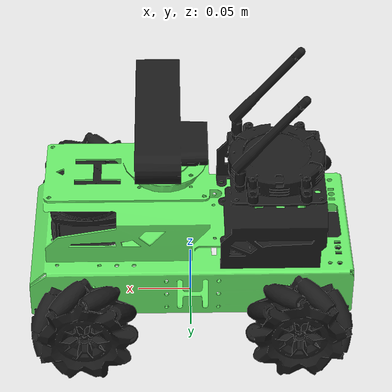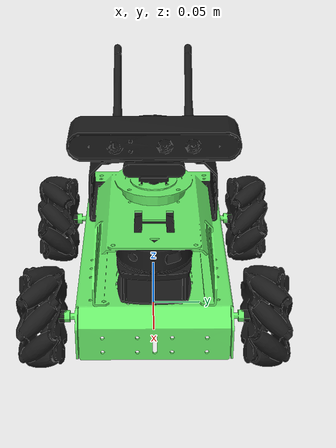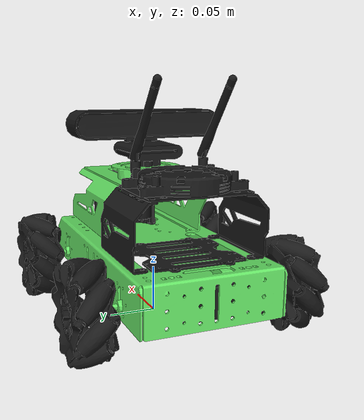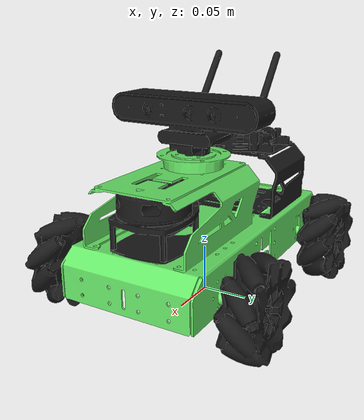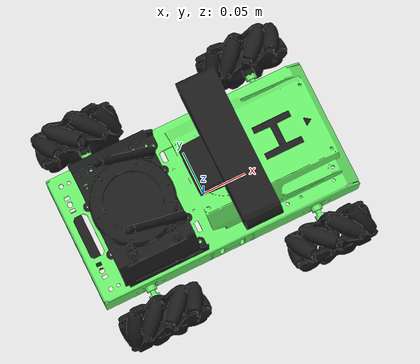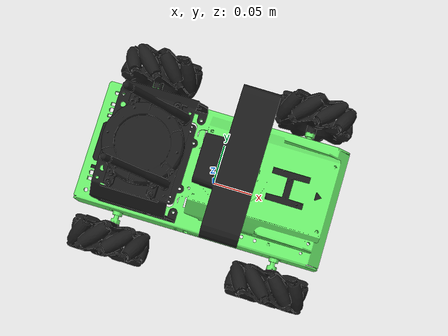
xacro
<?xml version="1.0" encoding="utf-8"?>  <!-- XML文件声明 -->
<robot name="jetauto" xmlns:xacro="http://ros.org/wiki/xacro" xmlns:ignition="http://gazebosim.org/schema/">

    <!-- 定义机器人名称参数 -->
    <xacro:arg name="robot_name" default="jetauto"/>

    <!-- 包含基础配置文件 - 仅包含一次材质定义 -->
    <xacro:include filename="$(find mecabot_gz)/urdf/materials.xacro"/>     <!-- 包含材质定义文件 -->
    <xacro:include filename="$(find mecabot_gz)/urdf/inertial_matrix.xacro"/> <!-- 包含惯性矩阵定义文件 -->

    <!-- 定义M_PI变量，确保所有引入的文件可用 -->
    <xacro:property name="M_PI" value="3.1415926535897931" />
    <xacro:property name="camera_x" value="0.120" />

    <!-- 包含IMU配置 -->
    <xacro:include filename="$(find mecabot_gz)/urdf/imu.urdf.xacro"/>     <!-- 包含IMU传感器配置文件 -->

    <!-- 激光雷达配置部分 -->
    <xacro:include filename="$(find mecabot_gz)/urdf/lidar_a1.urdf.xacro"/> <!-- 包含A1激光雷达配置 -->

    <!-- JetAuto标准版配置 -->
    <xacro:include filename="$(find mecabot_gz)/urdf/depth_camera.urdf.xacro"/> <!-- 包含深度相机配置 -->
    <xacro:include filename="$(find mecabot_gz)/urdf/jetauto_car.urdf.xacro"/> <!-- 包含标准版底盘配置 -->

    <!-- 加载参数 -->
    <xacro:arg name="use_sim_time" default="true"/>
    <xacro:arg name="mecanum_control" default="true"/>
    <xacro:arg name="use_gazebo" default="true"/>
    <!-- Include and instantiate ros2_control -->
    <xacro:include filename="$(find mecabot_gz)/urdf/ros2_control.xacro" />
    <xacro:jetauto_ros2_control />

    <!-- 应用Gazebo材质映射 -->

    <gazebo reference='wheel_left_front_link'>
        <collision>
            <surface>
            <friction>
                <ode>
                <mu>1.0</mu>
                <mu2>0.0</mu2>
                <fdir1 ignition:expressed_in="base_link">1 -1 0</fdir1>
                </ode>
            </friction>
            </surface>
        </collision>
    </gazebo>

    <gazebo reference='wheel_left_back_link'>
        <collision>
            <surface>
            <friction>
                <ode>
                <mu>1.0</mu>
                <mu2>0.0</mu2>
                <fdir1 ignition:expressed_in="base_link">1 1 0</fdir1>
                </ode>
            </friction>
            </surface>
        </collision>
    </gazebo>

    <gazebo reference='wheel_right_front_link'>
        <collision>
            <surface>
            <friction>
                <ode>
                <mu>1.0</mu>
                <mu2>0.0</mu2>
                <fdir1 ignition:expressed_in="base_link">1 1 0</fdir1>
                </ode>
            </friction>
            </surface>
        </collision>
    </gazebo>

    <gazebo reference='wheel_right_back_link'>
        <collision>
            <surface>
            <friction>
                <ode>
                <mu>1.0</mu>
                <mu2>0.0</mu2>
                <fdir1 ignition:expressed_in="base_link">1 -1 0</fdir1>
                </ode>
            </friction>
            </surface>
        </collision>
    </gazebo>

</robot>

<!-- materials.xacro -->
<robot xmlns:xacro="http://ros.org/wiki/xacro">
    <material name="black">
        <color rgba="0.1 0.1 0.1 1.0"/>
    </material>

    <material name="blue">
        <color rgba="0.0 0.0 0.8 1.0"/>
    </material>

    <material name="green">
        <color rgba="0.4 0.9 0.4 1.0"/>
    </material>

    <material name="gray">
        <color rgba="0.7 0.7 0.7 1.0"/>
    </material>

    <material name="darkgray">
        <color rgba="0.3 0.3 0.3 1.0"/>
    </material>

    <material name="red">
        <color rgba="0.8 0.0 0.0 1.0"/>
    </material>

    <material name="white">
        <color rgba="1.0 1.0 1.0 1.0"/>
    </material>

    <material name="yellow">
        <color rgba="0.8 0.8 0.0 1.0"/>
    </material>

    <!-- Gazebo材质映射 - 修正为正确的映射方式 -->
    <xacro:macro name="gazebo_material_black" params="reference">
        <gazebo reference="${reference}">
            <material>Gazebo/Black</material>
        </gazebo>
    </xacro:macro>

    <xacro:macro name="gazebo_material_blue" params="reference">
        <gazebo reference="${reference}">
            <material>Gazebo/Blue</material>
        </gazebo>
    </xacro:macro>

    <xacro:macro name="gazebo_material_green" params="reference">
        <gazebo reference="${reference}">
            <material>Gazebo/Green</material>
        </gazebo>
    </xacro:macro>

    <xacro:macro name="gazebo_material_grey" params="reference">
        <gazebo reference="${reference}">
            <material>Gazebo/Grey</material>
        </gazebo>
    </xacro:macro>

    <xacro:macro name="gazebo_material_darkgrey" params="reference">
        <gazebo reference="${reference}">
            <material>Gazebo/DarkGrey</material>
        </gazebo>
    </xacro:macro>

    <xacro:macro name="gazebo_material_red" params="reference">
        <gazebo reference="${reference}">
            <material>Gazebo/Red</material>
        </gazebo>
    </xacro:macro>

    <xacro:macro name="gazebo_material_white" params="reference">
        <gazebo reference="${reference}">
            <material>Gazebo/White</material>
        </gazebo>
    </xacro:macro>

    <xacro:macro name="gazebo_material_yellow" params="reference">
        <gazebo reference="${reference}">
            <material>Gazebo/Yellow</material>
        </gazebo>
    </xacro:macro>
</robot>

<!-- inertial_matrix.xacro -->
<robot name="jetauto" xmlns:xacro="http://ros.org/wiki/xacro">
  <xacro:property name="M_PI" value="3.1415926535897931" />

  <!-- Macro for inertia matrix -->
  <xacro:macro name="sphere_inertial" params="m r">
    <inertial>
      <mass value="${m}" />
      <inertia
        ixx="${2*m*r*r/5}"
        ixy="0"
        ixz="0"
        iyy="${2*m*r*r/5}"
        iyz="0"
        izz="${2*m*r*r/5}" />
    </inertial>
  </xacro:macro>

  <xacro:macro name="cylinder_inertial" params="m r h">
    <inertial>
      <mass value="${m}" />
      <inertia
        ixx="${m*(3*r*r+h*h)/12}"
        ixy = "0"
        ixz = "0"
        iyy="${m*(3*r*r+h*h)/12}"
        iyz = "0"
        izz="${m*r*r/2}" />
    </inertial>
  </xacro:macro>

  <xacro:macro name="box_inertial" params="m w h d">
    <inertial>
      <mass value="${m}" />
      <inertia
        ixx="${m*(h*h+d*d)/12}"
        ixy = "0"
        ixz = "0"
        iyy="${m*(w*w+d*d)/12}"
        iyz = "0"
        izz="${m*(w*w+h*h)/12}" />
    </inertial>
  </xacro:macro>
</robot>

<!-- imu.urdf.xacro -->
<robot name="imu" xmlns:xacro="http://ros.org/wiki/xacro">
  <xacro:property name="M_PI" value="3.1415926535897931"/>

  <!-- IMU链接 -->
  <link name="imu_link"/>

  <!-- IMU与底盘的连接关节，注意旋转方向 -->
  <joint
    name="imu_joint"
    type="fixed">
    <origin
      xyz="0 0 ${0.025 - 0.0295 + 0.0965/2 + 0.0678410821576746}"
      rpy="0 0 ${-M_PI/2}" /> <!-- 绕 Z 轴旋转-90度 -->
    <parent
      link="base_link"/>
    <child
      link="imu_link"/>
  </joint>

  <!-- 包含IMU的Gazebo-->
  <xacro:include filename="$(find mecabot_gz)/urdf/plugins/gazebo_imu.xacro"/>

</robot>

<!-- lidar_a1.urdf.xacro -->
<robot name="lidar" xmlns:xacro="http://ros.org/wiki/xacro" >
  <xacro:property name="M_PI" value="3.1415926535897931"/>

  <!-- 激光雷达主体链接 -->
  <link name="lidar_link">
    <inertial>
      <origin
        xyz="-0.0157049024536227 0.000340793431659825 -0.0214732100882973"
        rpy="0 0 0" />
      <mass
        value="0.0522535578752524" />
      <inertia
        ixx="1.4542908499666E-05"
        ixy="4.8193721668021E-08"
        ixz="2.30575406031324E-07"
        iyy="1.85618648837978E-05"
        iyz="-1.29750110413905E-08"
        izz="3.10574357987674E-05" />
    </inertial>
    <visual>
      <origin
        xyz="0 0 0"
        rpy="0 0 0" />
      <geometry>
        <mesh
          filename="package://mecabot_gz/meshes/lidar_link.stl" />
      </geometry>
      <material name="black"/>
    </visual>
    <collision>
      <origin
        xyz="0 0 0"
        rpy="0 0 0" />
      <geometry>
        <mesh
          filename="package://mecabot_gz/meshes/lidar_link.stl" />
      </geometry>
    </collision>
  </link>

  <!-- 激光雷达与底盘的连接关节 -->
  <joint
    name="lidar_joint"
    type="fixed">
    <origin
      xyz="0.0959394346777203 -1.03974386779226E-05 0.128396206697751"
      rpy="0 0 0" />
    <parent
      link="base_link" />
    <child
      link="lidar_link" />
    <axis
      xyz="0 0 0" />
  </joint>

  <!-- 激光雷达仿真框架 -->
  <link name="lidar_sim_frame" />
  <joint
    name="lidar_sim_frame_joint"
    type="fixed">
    <origin xyz="0 0 0" rpy="0 0 0" />
    <parent link="lidar_link" />
    <child link="lidar_sim_frame" />
  </joint>

  <!-- 包含定义了 lidar_sensor_definition 宏的 XACRO 文件 -->
  <xacro:include filename="$(find mecabot_gz)/urdf/plugins/gazebo_lidar.xacro"/>

  <!-- 调用 lidar_sensor_definition 宏并传递参数 -->

</robot>

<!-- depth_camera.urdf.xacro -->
<robot name="depth_camera" xmlns:xacro="http://ros.org/wiki/xacro" >
  <xacro:property name="M_PI"   value="3.1415926535897931"/>
  <link
    name="depth_cam_link">
    <inertial>
      <origin
        xyz="0.000254340878565573 0.00268031633059271 -0.00569075323067275"
        rpy="0 0 0" />
      <mass
        value="0.227980406655671" />
      <inertia
        ixx="4.8473190489023E-05"
        ixy="8.29314946303069E-09"
        ixz="-5.0952649884666E-09"
        iyy="0.000408820027771005"
        iyz="-1.36580074559918E-07"
        izz="0.000429553467348926" />
    </inertial>
    <visual>
      <origin
        xyz="0 0 0"
        rpy="0 0 1.57" />
      <geometry>
        <mesh
          filename="package://mecabot_gz/meshes/depth_camera_link.stl" />
      </geometry>
      <material name="black"/>
    </visual>
    <collision>
      <origin
        xyz="0 0 0"
        rpy="0 0 0" />
      <geometry>
        <mesh
          filename="package://mecabot_gz/meshes/depth_camera_link_collision.stl" />
      </geometry>
    </collision>
  </link>

  <joint
    name="joint1"
    type="fixed">
    <origin
      xyz="0.0288581470059471 0 0.202093286991617"
      rpy="-0.000131510931722419 0 0" />
    <parent
      link="base_link" />
    <child
      link="depth_cam_link" />
    <axis
      xyz="0 0 1" />
  </joint>

  <link name="depth_cam_frame" />

  <joint
    name="depth_cam_joint"
    type="fixed">
    <parent link="depth_cam_link" />
    <child link="depth_cam_frame" />
    <origin xyz="0 0 0" rpy="${-M_PI/2} 0 ${-M_PI/2} "/>
  </joint>

  <!-- 包含深度相机的Gazebo配置 -->
  <xacro:include filename="$(find mecabot_gz)/urdf/plugins/gazebo_depth_camera.xacro"/>
</robot>

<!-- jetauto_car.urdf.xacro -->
<robot name="jetauto" xmlns:xacro="http://ros.org/wiki/xacro" >
  <xacro:property name="M_PI"               value="3.1415926535897931"/>
  <xacro:property name="base_link_mass"     value="1.6" />
  <xacro:property name="base_link_w"        value="0.297"/>
  <xacro:property name="base_link_h"        value="0.145"/>
  <xacro:property name="base_link_d"        value="0.11255"/>

  <xacro:property name="wheel_link_mass"    value="0.1" />
  <xacro:property name="wheel_link_radius"  value="0.049"/>
  <xacro:property name="wheel_link_length"  value="0.04167"/>

  <link name="base_footprint"/>

  <joint name="base_joint" type="fixed">
    <parent link="base_footprint"/>
    <child link="base_link"/>
    <origin xyz="0.0 0.0 0.005" rpy="0 0 0"/>
  </joint>

  <link
    name="base_link">
    <xacro:box_inertial m="${base_link_mass}" w="${base_link_w}" h="${base_link_h}" d="${base_link_d}"/>
    <visual>
      <origin
        xyz="0 0 0"
        rpy="0 0 0" />
      <geometry>
        <mesh
          filename="package://mecabot_gz/meshes/base_link.stl" />
      </geometry>
      <material name="green"/>
    </visual>
    <collision>
      <origin
        xyz="${base_link_w/2.0 - 0.14810} 0 ${0.126437/2 + 0.02362364}"
        rpy="0 0 0" />
      <geometry>
        <box size="${base_link_w} ${base_link_h} ${base_link_d}" />
      </geometry>
    </collision>
  </link>
  <link
    name="back_shell_link">
    <inertial>
      <origin
        xyz="-1.22838595456587E-05 0.00218574826309681 -0.0500522861933898"
        rpy="0 0 0" />
      <mass
        value="0.0663478534899862" />
      <inertia
        ixx="5.65277934912267E-05"
        ixy="-5.13394387877366E-11"
        ixz="-4.07561372273553E-11"
        iyy="4.33740893441632E-05"
        iyz="-5.43059341238134E-06"
        izz="6.86642544694324E-05" />
    </inertial>
    <visual>
      <origin
        xyz="0 0 0"
        rpy="0 0 0" />
      <geometry>
        <mesh
          filename="package://mecabot_gz/meshes/back_shell_link.stl" />
      </geometry>
      <material name="black">
      </material>
    </visual>
        <!--xyz="0 0 0"-->
  </link>
  <joint
    name="back_shell_joint"
    type="fixed">
    <origin
      xyz="-0.076481 0 0.082796"
      rpy="-3.1416 0 1.5708" />
    <parent
      link="base_link" />
    <child
      link="back_shell_link" />
  </joint>
   <link
    name="wheel_right_front_link">
    <xacro:sphere_inertial m="${wheel_link_mass}" r="${wheel_link_radius}" />
    <visual>
      <origin
        xyz="0 0 0"
        rpy="1.5708 1.5708 0" />
      <geometry>
        <mesh
          filename="package://mecabot_gz/meshes/wheel_right_front_link.stl" />
      </geometry>
      <material name="black"/>
    </visual>
    <collision>
      <origin
        xyz="0 0 0"
        rpy="0 0 0" />
      <geometry>
        <sphere radius="${wheel_link_radius}"/>
      </geometry>
    </collision>
  </link>
  <joint
    name="wheel_right_front_joint"
    type="continuous">
    <origin
      xyz="0.097397 -0.086125 0.04508" />
    <parent
      link="base_link" />
    <axis xyz="0 1 0"/>
    <child
      link="wheel_right_front_link" />
    <axis xyz="0 0 -1" />
  </joint>
  <link
    name="wheel_left_front_link">
    <xacro:sphere_inertial m="${wheel_link_mass}" r="${wheel_link_radius}" />
    <visual>
      <origin
        xyz="0 0 0"
        rpy="1.5708 1.5708 0" />
      <geometry>
        <mesh
          filename="package://mecabot_gz/meshes/wheel_left_front_link.stl" />
      </geometry>
      <material name="black"/>
    </visual>
    <collision>
      <origin
        xyz="0 0 0"
        rpy="0 0 0" />
      <geometry>
        <sphere radius="${wheel_link_radius}"/>
      </geometry>
    </collision>
  </link>
  <joint
    name="wheel_left_front_joint"
    type="continuous">
    <origin
      xyz="0.097397 0.086125 0.04508" />
    <parent
      link="base_link" />
    <axis xyz="0 1 0"/>
    <child
      link="wheel_left_front_link" />
    <axis xyz="0 0 -1" />
  </joint>
  <link
    name="wheel_right_back_link">
    <xacro:sphere_inertial m="${wheel_link_mass}" r="${wheel_link_radius}" />
    <visual>
      <origin
        xyz="0 0 0"
        rpy="1.5708 1.5708 0" />
      <geometry>
        <mesh
          filename="package://mecabot_gz/meshes/wheel_right_back_link.stl" />
      </geometry>
      <material name="black"/>
    </visual>
    <collision>
      <origin
        xyz="0 0 0"
        rpy="0 0 0" />
      <geometry>
        <sphere radius="${wheel_link_radius}"/>
      </geometry>
    </collision>
  </link>
  <joint
    name="wheel_right_back_joint"
    type="continuous">
    <origin
      xyz="-0.097397 -0.086125 0.04508" />
    <parent
      link="base_link" />
    <axis xyz="0 1 0"/>
    <child
      link="wheel_right_back_link" />
    <axis xyz="0 0 -1" />
  </joint>
  <link
    name="wheel_left_back_link">
    <xacro:sphere_inertial m="${wheel_link_mass}" r="${wheel_link_radius}" />
    <visual>
      <origin
        xyz="0 0 0"
        rpy="1.5708 1.5708 0" />
      <geometry>
        <mesh
          filename="package://mecabot_gz/meshes/wheel_left_back_link.stl" />
      </geometry>
      <material name="black"/>
    </visual>
    <collision>
      <origin
        xyz="0 0 0"
        rpy="0 0 0" />
      <geometry>
        <sphere radius="${wheel_link_radius}"/>
      </geometry>
    </collision>
  </link>
  <joint
    name="wheel_left_back_joint"
    type="continuous">
    <origin
      xyz="-0.097397 0.086125 0.04508" />
    <parent
      link="base_link" />
    <axis xyz="0 1 0"/>
    <child
      link="wheel_left_back_link" />
    <axis xyz="0 0 -1" />
  </joint>
  <link
    name="mic_link">
    <inertial>
      <origin
        xyz="7.37972827624667E-07 0.000380767498086923 -0.0010743560446495"
        rpy="0 0 0" />
      <mass
        value="0.0234232570822793" />
      <inertia
        ixx="1.59705800233789E-05"
        ixy="-5.64325349754072E-11"
        ixz="8.96027229707658E-11"
        iyy="2.23652963143563E-05"
        iyz="6.01204669252721E-08"
        izz="3.74624298483869E-05" />
    </inertial>
    <visual>
      <origin
        xyz="0 0 0"
        rpy="0 0 0" />
      <geometry>
        <mesh
          filename="package://mecabot_gz/meshes/mic_link.stl" />
      </geometry>
      <material name="black"/>
    </visual>
        <!--xyz="0 0 0"-->
  </link>
  <joint
    name="mic_joint"
    type="fixed">
    <origin
      xyz="-0.079228 -1.5532E-05 0.15861"
      rpy="0 0 1.5708" />
    <parent
      link="base_link" />
    <child
      link="mic_link" />
  </joint>
  <link
    name="speaker_link">
    <inertial>
      <origin
        xyz="0 0 0"
        rpy="0 0 0" />
      <mass
        value="0" />
      <inertia
        ixx="0"
        ixy="0"
        ixz="0"
        iyy="0"
        iyz="0"
        izz="0" />
    </inertial>
    <visual>
      <origin
        xyz="0 0 0"
        rpy="0 0 0" />
      <geometry>
        <mesh
          filename="package://mecabot_gz/meshes/speaker_link.stl" />
      </geometry>
      <material name="black"/>
    </visual>
        <!--xyz="0 0 0"-->
  </link>
  <joint
    name="speaker_joint"
    type="fixed">
    <origin
      xyz="-0.130292759618243 0 0.0549589364206024"
      rpy="0 0 0" />
    <parent
      link="base_link" />
    <child
      link="speaker_link" />
  </joint>
</robot>
